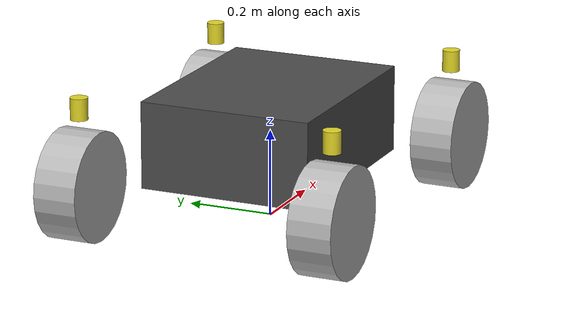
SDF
<?xml version='1.0'?>
<sdf version='1.6'>
<model name='jet_boat_proxy_ardupilot'>
    <pose>0 0 0.21 0 0 0</pose>

    <include>
        <pose>0 0 0 0 0 0</pose>
        <uri>model://jet_boat_proxy</uri>
    </include>

    <plugin name="ardupilot_plugin" filename="libArduPilotPlugin.so">
        <!-- Port settings -->
        <fdm_addr>127.0.0.1</fdm_addr>
        <fdm_port_in>9002</fdm_port_in>
        <connectionTimeoutMaxCount>5</connectionTimeoutMaxCount>
        <modelXYZToAirplaneXForwardZDown>0 0 0 3.141593 0 0</modelXYZToAirplaneXForwardZDown>
        <gazeboXYZToNED>0 0 0 3.141593 0 0</gazeboXYZToNED>

        <!-- Sensors -->
        <imuName>jet_boat_proxy_ardupilot::imu_link::imu_sensor</imuName>

        <!--
            SERVO1_FUNCTION 94 (Script 1)
        -->
        <control channel="0">
            <jointName>jet_boat_proxy_ardupilot::jet_boat_proxy::front_left_wheel_joint</jointName>
            <useForce>1</useForce>
            <multiplier>10.0</multiplier>
            <offset>0.0</offset>
            <servo_min>1000</servo_min>
            <servo_max>2000</servo_max>
            <type>VELOCITY</type>
            <p_gain>1</p_gain>
            <i_gain>0</i_gain>
            <d_gain>0</d_gain>
            <i_max>1</i_max>
            <i_min>0</i_min>
            <cmd_max>10.0</cmd_max>
            <cmd_min>-10.0</cmd_min>
        </control>

        <!--
            SERVO2_FUNCTION 95 (Script 2)
        -->
        <control channel="1">
            <jointName>jet_boat_proxy_ardupilot::jet_boat_proxy::front_right_wheel_joint</jointName>
            <useForce>1</useForce>
            <multiplier>10.0</multiplier>
            <offset>0.0</offset>
            <servo_min>1000</servo_min>
            <servo_max>2000</servo_max>
            <type>VELOCITY</type>
            <p_gain>1</p_gain>
            <i_gain>0</i_gain>
            <d_gain>0</d_gain>
            <i_max>1</i_max>
            <i_min>0</i_min>
            <cmd_max>10.0</cmd_max>
            <cmd_min>-10.0</cmd_min>
        </control>

        <!--
            SERVO3_FUNCTION 96 (Script 3)
        -->
        <control channel="2">
            <jointName>jet_boat_proxy_ardupilot::jet_boat_proxy::front_left_steer_joint</jointName>
            <useForce>1</useForce>
            <multiplier>3.14159265</multiplier>
            <offset>0.0</offset>
            <servo_min>1000</servo_min>
            <servo_max>2000</servo_max>
            <type>POSITION</type>
            <p_gain>100.0</p_gain>
            <i_gain>0</i_gain>
            <d_gain>0.1</d_gain>
            <i_max>1</i_max>
            <i_min>0</i_min>
            <cmd_max>3.14159265</cmd_max>
            <cmd_min>-3.14159265</cmd_min>
        </control>

        <!--
            SERVO4_FUNCTION 97 (Script 4)
        -->
        <control channel="3">
            <jointName>jet_boat_proxy_ardupilot::jet_boat_proxy::front_right_steer_joint</jointName>
            <useForce>1</useForce>
            <multiplier>-3.14159265</multiplier>
            <offset>0.0</offset>
            <servo_min>1000</servo_min>
            <servo_max>2000</servo_max>
            <type>POSITION</type>
            <p_gain>100.0</p_gain>
            <i_gain>0</i_gain>
            <d_gain>0.1</d_gain>
            <i_max>1</i_max>
            <i_min>0</i_min>
            <cmd_max>3.14159265</cmd_max>
            <cmd_min>-3.14159265</cmd_min>
        </control>

        <!--
            SERVO5_FUNCTION 98 (Script 3)
        -->
        <control channel="4">
            <jointName>jet_boat_proxy_ardupilot::jet_boat_proxy::back_left_steer_joint</jointName>
            <useForce>1</useForce>
            <multiplier>1.570796327</multiplier>
            <offset>-0.5</offset>
            <servo_min>1000</servo_min>
            <servo_max>2000</servo_max>
            <type>POSITION</type>
            <p_gain>100.0</p_gain>
            <i_gain>0</i_gain>
            <d_gain>0.1</d_gain>
            <i_max>1</i_max>
            <i_min>0</i_min>
            <cmd_max>0.785398163</cmd_max>
            <cmd_min>-0.785398163</cmd_min>
        </control>

        <!--
            SERVO5_FUNCTION 99 (Script 3)
        -->
        <control channel="5">
            <jointName>jet_boat_proxy_ardupilot::jet_boat_proxy::back_right_steer_joint</jointName>
            <useForce>1</useForce>
            <multiplier>1.570796327</multiplier>
            <offset>-0.5</offset>
            <servo_min>1000</servo_min>
            <servo_max>2000</servo_max>
            <type>POSITION</type>
            <p_gain>100.0</p_gain>
            <i_gain>0</i_gain>
            <d_gain>0.1</d_gain>
            <i_max>1</i_max>
            <i_min>0</i_min>
            <cmd_max>0.785398163</cmd_max>
            <cmd_min>-0.785398163</cmd_min>
        </control>

    </plugin>

    <link name='imu_link'>
        <inertial>
            <mass>0.01</mass>
            <inertia>
                <ixx>1.66667E-07</ixx>
                <ixy>0</ixy>
                <ixz>0</ixz>
                <iyy>1.66667E-07</iyy>
                <iyz>0</iyz>
                <izz>1.66667E-07</izz>
            </inertia>
        </inertial>
        <sensor name="imu_sensor" type="imu">
            <pose>0 0 0 3.141593 0 0</pose>
            <always_on>1</always_on>
            <update_rate>1000.0</update_rate>
        </sensor>
    </link>

    <joint name='imu_joint' type='fixed'>
        <child>imu_link</child>
        <parent>jet_boat_proxy_ardupilot::jet_boat_proxy::base_link</parent>
    </joint>
</model>
</sdf>

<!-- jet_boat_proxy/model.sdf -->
<sdf version='1.7'>
  <model name='jet_boat_proxy'>
    <link name='base_link'>
      <inertial>
        <pose>0 0 0 0 -0 0</pose>
        <mass>0.5</mass>
        <inertia>
          <ixx>0.00833333</ixx>
          <ixy>0</ixy>
          <ixz>0</ixz>
          <iyy>0.0120833</iyy>
          <iyz>0</iyz>
          <izz>0.0170833</izz>
        </inertia>
      </inertial>
      <collision name='base_link_collision'>
        <pose>0 0 0 0 -0 0</pose>
        <geometry>
          <box>
            <size>0.5 0.4 0.2</size>
          </box>
        </geometry>
        <surface>
          <friction>
            <ode>
              <mu2>1</mu2>
              <fdir1>1 0 0</fdir1>
              <mu1>1.0</mu1>
            </ode>
          </friction>
          <contact>
            <ode>
              <kp>1e+15</kp>
              <kd>1e+13</kd>
            </ode>
          </contact>
        </surface>
      </collision>
      <visual name='base_link_visual'>
        <pose>0 0 0 0 -0 0</pose>
        <geometry>
          <box>
            <size>0.5 0.4 0.2</size>
          </box>
        </geometry>
        <material>
          <script>
            <name>Gazebo/DarkGray</name>
            <uri>file://media/materials/scripts/gazebo.material</uri>
          </script>
        </material>
      </visual>
      <gravity>1</gravity>
      <velocity_decay/>
    </link>
    <joint name='back_left_steer_joint' type='revolute'>
      <pose relative_to='base_link'>-0.35 0.3 0.1 0 -0 0</pose>
      <parent>base_link</parent>
      <child>back_left_steer_link</child>
      <axis>
        <xyz>0 0 1</xyz>
        <limit>
          <lower>-0.785398</lower>
          <upper>0.785398</upper>
          <effort>100</effort>
          <velocity>0.5</velocity>
        </limit>
        <dynamics>
          <damping>0.01</damping>
          <friction>0.001</friction>
          <spring_reference>0</spring_reference>
          <spring_stiffness>0</spring_stiffness>
        </dynamics>
      </axis>
      <physics>
        <ode>
          <limit>
            <cfm>0</cfm>
            <erp>0.2</erp>
          </limit>
        </ode>
      </physics>
    </joint>
    <link name='back_left_steer_link'>
      <pose relative_to='back_left_steer_joint'>0 0 0 0 -0 0</pose>
      <inertial>
        <pose>0 0 0 0 -0 0</pose>
        <mass>0.1</mass>
        <inertia>
          <ixx>3.08333e-05</ixx>
          <ixy>0</ixy>
          <ixz>0</ixz>
          <iyy>3.08333e-05</iyy>
          <iyz>0</iyz>
          <izz>2e-05</izz>
        </inertia>
      </inertial>
      <collision name='back_left_steer_link_collision'>
        <pose>0 0 0 0 -0 0</pose>
        <geometry>
          <cylinder>
            <length>0.05</length>
            <radius>0.02</radius>
          </cylinder>
        </geometry>
        <surface>
          <friction>
            <ode>
              <mu2>1</mu2>
              <fdir1>1 0 0</fdir1>
              <mu1>1.0</mu1>
            </ode>
          </friction>
          <contact>
            <ode>
              <kp>1e+15</kp>
              <kd>1e+13</kd>
            </ode>
          </contact>
        </surface>
      </collision>
      <visual name='back_left_steer_link_visual'>
        <pose>0 0 0 0 -0 0</pose>
        <geometry>
          <cylinder>
            <length>0.05</length>
            <radius>0.02</radius>
          </cylinder>
        </geometry>
        <material>
          <script>
            <name>Gazebo/Yellow</name>
            <uri>file://media/materials/scripts/gazebo.material</uri>
          </script>
        </material>
      </visual>
      <gravity>1</gravity>
      <velocity_decay/>
    </link>
    <joint name='back_left_wheel_joint' type='revolute'>
      <pose relative_to='back_left_steer_link'>0 0 -0.175 -1.5708 0 0</pose>
      <parent>back_left_steer_link</parent>
      <child>back_left_wheel_link</child>
      <axis>
        <xyz>0 0 1</xyz>
        <limit>
          <lower>-1e+16</lower>
          <upper>1e+16</upper>
        </limit>
        <dynamics>
          <damping>0.01</damping>
          <friction>0.001</friction>
          <spring_reference>0</spring_reference>
          <spring_stiffness>0</spring_stiffness>
        </dynamics>
      </axis>
      <physics>
        <ode>
          <limit>
            <cfm>0</cfm>
            <erp>0.2</erp>
          </limit>
        </ode>
      </physics>
    </joint>
    <link name='back_left_wheel_link'>
      <pose relative_to='back_left_wheel_joint'>0 0 0 0 -0 0</pose>
      <inertial>
        <pose>0 0 0 0 -0 0</pose>
        <mass>0.1</mass>
        <inertia>
          <ixx>0.000473958</ixx>
          <ixy>0</ixy>
          <ixz>0</ixz>
          <iyy>0.000473958</iyy>
          <iyz>0</iyz>
          <izz>0.00078125</izz>
        </inertia>
      </inertial>
      <collision name='back_left_wheel_link_collision'>
        <pose>0 0 0 0 -0 0</pose>
        <geometry>
          <cylinder>
            <length>0.1</length>
            <radius>0.125</radius>
          </cylinder>
        </geometry>
      </collision>
      <visual name='back_left_wheel_link_visual'>
        <pose>0 0 0 0 -0 0</pose>
        <geometry>
          <cylinder>
            <length>0.1</length>
            <radius>0.125</radius>
          </cylinder>
        </geometry>
      </visual>
    </link>
    <joint name='back_right_steer_joint' type='revolute'>
      <pose relative_to='base_link'>-0.35 -0.3 0.1 0 -0 0</pose>
      <parent>base_link</parent>
      <child>back_right_steer_link</child>
      <axis>
        <xyz>0 0 1</xyz>
        <limit>
          <lower>-0.785398</lower>
          <upper>0.785398</upper>
          <effort>100</effort>
          <velocity>0.5</velocity>
        </limit>
        <dynamics>
          <damping>0.01</damping>
          <friction>0.001</friction>
          <spring_reference>0</spring_reference>
          <spring_stiffness>0</spring_stiffness>
        </dynamics>
      </axis>
      <physics>
        <ode>
          <limit>
            <cfm>0</cfm>
            <erp>0.2</erp>
          </limit>
        </ode>
      </physics>
    </joint>
    <link name='back_right_steer_link'>
      <pose relative_to='back_right_steer_joint'>0 0 0 0 -0 0</pose>
      <inertial>
        <pose>0 0 0 0 -0 0</pose>
        <mass>0.1</mass>
        <inertia>
          <ixx>3.08333e-05</ixx>
          <ixy>0</ixy>
          <ixz>0</ixz>
          <iyy>3.08333e-05</iyy>
          <iyz>0</iyz>
          <izz>2e-05</izz>
        </inertia>
      </inertial>
      <collision name='back_right_steer_link_collision'>
        <pose>0 0 0 0 -0 0</pose>
        <geometry>
          <cylinder>
            <length>0.05</length>
            <radius>0.02</radius>
          </cylinder>
        </geometry>
        <surface>
          <friction>
            <ode>
              <mu2>1</mu2>
              <fdir1>1 0 0</fdir1>
              <mu1>1.0</mu1>
            </ode>
          </friction>
          <contact>
            <ode>
              <kp>1e+15</kp>
              <kd>1e+13</kd>
            </ode>
          </contact>
        </surface>
      </collision>
      <visual name='back_right_steer_link_visual'>
        <pose>0 0 0 0 -0 0</pose>
        <geometry>
          <cylinder>
            <length>0.05</length>
            <radius>0.02</radius>
          </cylinder>
        </geometry>
        <material>
          <script>
            <name>Gazebo/Yellow</name>
            <uri>file://media/materials/scripts/gazebo.material</uri>
          </script>
        </material>
      </visual>
      <gravity>1</gravity>
      <velocity_decay/>
    </link>
    <joint name='back_right_wheel_joint' type='revolute'>
      <pose relative_to='back_right_steer_link'>0 0 -0.175 -1.5708 0 0</pose>
      <parent>back_right_steer_link</parent>
      <child>back_right_wheel_link</child>
      <axis>
        <xyz>0 0 1</xyz>
        <limit>
          <lower>-1e+16</lower>
          <upper>1e+16</upper>
        </limit>
        <dynamics>
          <damping>0.01</damping>
          <friction>0.001</friction>
          <spring_reference>0</spring_reference>
          <spring_stiffness>0</spring_stiffness>
        </dynamics>
      </axis>
      <physics>
        <ode>
          <limit>
            <cfm>0</cfm>
            <erp>0.2</erp>
          </limit>
        </ode>
      </physics>
    </joint>
    <link name='back_right_wheel_link'>
      <pose relative_to='back_right_wheel_joint'>0 0 0 0 -0 0</pose>
      <inertial>
        <pose>0 0 0 0 -0 0</pose>
        <mass>0.1</mass>
        <inertia>
          <ixx>0.000473958</ixx>
          <ixy>0</ixy>
          <ixz>0</ixz>
          <iyy>0.000473958</iyy>
          <iyz>0</iyz>
          <izz>0.00078125</izz>
        </inertia>
      </inertial>
      <collision name='back_right_wheel_link_collision'>
        <pose>0 0 0 0 -0 0</pose>
        <geometry>
          <cylinder>
            <length>0.1</length>
            <radius>0.125</radius>
          </cylinder>
        </geometry>
      </collision>
      <visual name='back_right_wheel_link_visual'>
        <pose>0 0 0 0 -0 0</pose>
        <geometry>
          <cylinder>
            <length>0.1</length>
            <radius>0.125</radius>
          </cylinder>
        </geometry>
      </visual>
    </link>
    <joint name='front_left_steer_joint' type='revolute'>
      <pose relative_to='base_link'>0.35 0.3 0.1 0 -0 0</pose>
      <parent>base_link</parent>
      <child>front_left_steer_link</child>
      <axis>
        <xyz>0 0 1</xyz>
        <limit>
          <lower>0</lower>
          <upper>3.14159</upper>
          <effort>100</effort>
          <velocity>0.5</velocity>
        </limit>
        <dynamics>
          <damping>0.01</damping>
          <friction>0.001</friction>
          <spring_reference>0</spring_reference>
          <spring_stiffness>0</spring_stiffness>
        </dynamics>
      </axis>
      <physics>
        <ode>
          <limit>
            <cfm>0</cfm>
            <erp>0.2</erp>
          </limit>
        </ode>
      </physics>
    </joint>
    <link name='front_left_steer_link'>
      <pose relative_to='front_left_steer_joint'>0 0 0 0 -0 0</pose>
      <inertial>
        <pose>0 0 0 0 -0 0</pose>
        <mass>0.1</mass>
        <inertia>
          <ixx>3.08333e-05</ixx>
          <ixy>0</ixy>
          <ixz>0</ixz>
          <iyy>3.08333e-05</iyy>
          <iyz>0</iyz>
          <izz>2e-05</izz>
        </inertia>
      </inertial>
      <collision name='front_left_steer_link_collision'>
        <pose>0 0 0 0 -0 0</pose>
        <geometry>
          <cylinder>
            <length>0.05</length>
            <radius>0.02</radius>
          </cylinder>
        </geometry>
        <surface>
          <friction>
            <ode>
              <mu2>1</mu2>
              <fdir1>1 0 0</fdir1>
              <mu1>1.0</mu1>
            </ode>
          </friction>
          <contact>
            <ode>
              <kp>1e+15</kp>
              <kd>1e+13</kd>
            </ode>
          </contact>
        </surface>
      </collision>
      <visual name='front_left_steer_link_visual'>
        <pose>0 0 0 0 -0 0</pose>
        <geometry>
          <cylinder>
            <length>0.05</length>
            <radius>0.02</radius>
          </cylinder>
        </geometry>
        <material>
          <script>
            <name>Gazebo/Yellow</name>
            <uri>file://media/materials/scripts/gazebo.material</uri>
          </script>
        </material>
      </visual>
      <gravity>1</gravity>
      <velocity_decay/>
    </link>
    <joint name='front_left_wheel_joint' type='revolute'>
      <pose relative_to='front_left_steer_link'>0 0 -0.175 -1.5708 0 0</pose>
      <parent>front_left_steer_link</parent>
      <child>front_left_wheel_link</child>
      <axis>
        <xyz>0 0 1</xyz>
        <limit>
          <lower>-1e+16</lower>
          <upper>1e+16</upper>
        </limit>
        <dynamics>
          <damping>0.01</damping>
          <friction>0.001</friction>
          <spring_reference>0</spring_reference>
          <spring_stiffness>0</spring_stiffness>
        </dynamics>
      </axis>
      <physics>
        <ode>
          <limit>
            <cfm>0</cfm>
            <erp>0.2</erp>
          </limit>
        </ode>
      </physics>
    </joint>
    <link name='front_left_wheel_link'>
      <pose relative_to='front_left_wheel_joint'>0 0 0 0 -0 0</pose>
      <inertial>
        <pose>0 0 0 0 -0 0</pose>
        <mass>0.1</mass>
        <inertia>
          <ixx>0.000473958</ixx>
          <ixy>0</ixy>
          <ixz>0</ixz>
          <iyy>0.000473958</iyy>
          <iyz>0</iyz>
          <izz>0.00078125</izz>
        </inertia>
      </inertial>
      <collision name='front_left_wheel_link_collision'>
        <pose>0 0 0 0 -0 0</pose>
        <geometry>
          <cylinder>
            <length>0.1</length>
            <radius>0.125</radius>
          </cylinder>
        </geometry>
      </collision>
      <visual name='front_left_wheel_link_visual'>
        <pose>0 0 0 0 -0 0</pose>
        <geometry>
          <cylinder>
            <length>0.1</length>
            <radius>0.125</radius>
          </cylinder>
        </geometry>
      </visual>
    </link>
    <joint name='front_right_steer_joint' type='revolute'>
      <pose relative_to='base_link'>0.35 -0.3 0.1 0 -0 0</pose>
      <parent>base_link</parent>
      <child>front_right_steer_link</child>
      <axis>
        <xyz>0 0 1</xyz>
        <limit>
          <lower>-3.14159</lower>
          <upper>0</upper>
          <effort>100</effort>
          <velocity>0.5</velocity>
        </limit>
        <dynamics>
          <damping>0.01</damping>
          <friction>0.001</friction>
          <spring_reference>0</spring_reference>
          <spring_stiffness>0</spring_stiffness>
        </dynamics>
      </axis>
      <physics>
        <ode>
          <limit>
            <cfm>0</cfm>
            <erp>0.2</erp>
          </limit>
        </ode>
      </physics>
    </joint>
    <link name='front_right_steer_link'>
      <pose relative_to='front_right_steer_joint'>0 0 0 0 -0 0</pose>
      <inertial>
        <pose>0 0 0 0 -0 0</pose>
        <mass>0.1</mass>
        <inertia>
          <ixx>3.08333e-05</ixx>
          <ixy>0</ixy>
          <ixz>0</ixz>
          <iyy>3.08333e-05</iyy>
          <iyz>0</iyz>
          <izz>2e-05</izz>
        </inertia>
      </inertial>
      <collision name='front_right_steer_link_collision'>
        <pose>0 0 0 0 -0 0</pose>
        <geometry>
          <cylinder>
            <length>0.05</length>
            <radius>0.02</radius>
          </cylinder>
        </geometry>
        <surface>
          <friction>
            <ode>
              <mu2>1</mu2>
              <fdir1>1 0 0</fdir1>
              <mu1>1.0</mu1>
            </ode>
          </friction>
          <contact>
            <ode>
              <kp>1e+15</kp>
              <kd>1e+13</kd>
            </ode>
          </contact>
        </surface>
      </collision>
      <visual name='front_right_steer_link_visual'>
        <pose>0 0 0 0 -0 0</pose>
        <geometry>
          <cylinder>
            <length>0.05</length>
            <radius>0.02</radius>
          </cylinder>
        </geometry>
        <material>
          <script>
            <name>Gazebo/Yellow</name>
            <uri>file://media/materials/scripts/gazebo.material</uri>
          </script>
        </material>
      </visual>
      <gravity>1</gravity>
      <velocity_decay/>
    </link>
    <joint name='front_right_wheel_joint' type='revolute'>
      <pose relative_to='front_right_steer_link'>0 0 -0.175 -1.5708 0 0</pose>
      <parent>front_right_steer_link</parent>
      <child>front_right_wheel_link</child>
      <axis>
        <xyz>0 0 1</xyz>
        <limit>
          <lower>-1e+16</lower>
          <upper>1e+16</upper>
        </limit>
        <dynamics>
          <damping>0.01</damping>
          <friction>0.001</friction>
          <spring_reference>0</spring_reference>
          <spring_stiffness>0</spring_stiffness>
        </dynamics>
      </axis>
      <physics>
        <ode>
          <limit>
            <cfm>0</cfm>
            <erp>0.2</erp>
          </limit>
        </ode>
      </physics>
    </joint>
    <link name='front_right_wheel_link'>
      <pose relative_to='front_right_wheel_joint'>0 0 0 0 -0 0</pose>
      <inertial>
        <pose>0 0 0 0 -0 0</pose>
        <mass>0.1</mass>
        <inertia>
          <ixx>0.000473958</ixx>
          <ixy>0</ixy>
          <ixz>0</ixz>
          <iyy>0.000473958</iyy>
          <iyz>0</iyz>
          <izz>0.00078125</izz>
        </inertia>
      </inertial>
      <collision name='front_right_wheel_link_collision'>
        <pose>0 0 0 0 -0 0</pose>
        <geometry>
          <cylinder>
            <length>0.1</length>
            <radius>0.125</radius>
          </cylinder>
        </geometry>
      </collision>
      <visual name='front_right_wheel_link_visual'>
        <pose>0 0 0 0 -0 0</pose>
        <geometry>
          <cylinder>
            <length>0.1</length>
            <radius>0.125</radius>
          </cylinder>
        </geometry>
      </visual>
    </link>
  </model>
</sdf>
